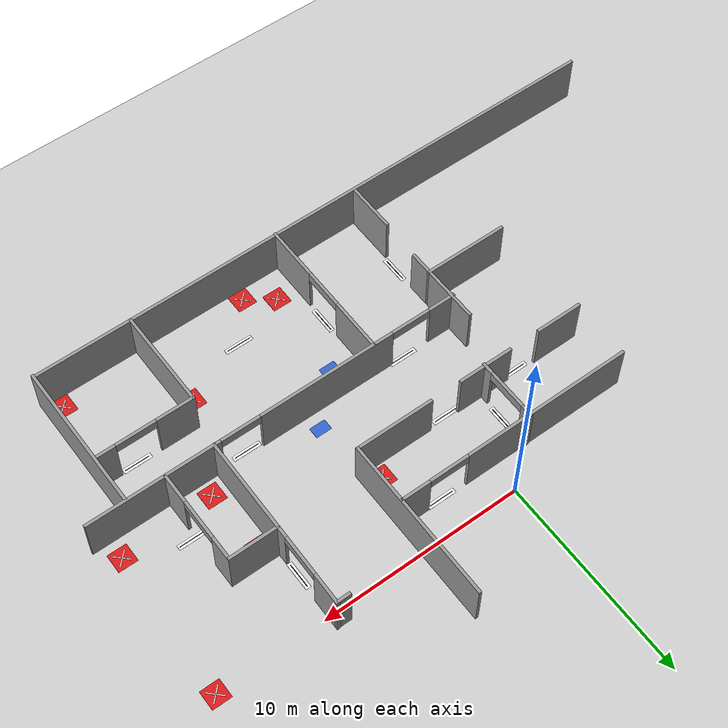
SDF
<sdf version="1.7">
 <world name="default">
  <model name="ground_plane">
   <static>1</static>
   <link name="link">
    <collision name="collision">
     <geometry><plane><normal>0 0 1</normal><size>100 100</size></plane></geometry>
     <surface><friction><ode><mu>100</mu><mu2>50</mu2></ode></friction></surface>
    </collision>
    <visual name="visual">
     <cast_shadows>0</cast_shadows>
     <geometry><plane><normal>0 0 1</normal><size>100 100</size></plane></geometry>
     <material>
      <script><uri>file://media/materials/scripts/gazebo.material</uri><name>Gazebo/Grey</name></script>
     </material>
    </visual>
   </link>
  </model>
  <model name="Untitled">
   <pose>-0.105598 -0.5029 0 0 -0 0</pose>
   <link name="Wall_100">
    <pose>12.1601 -5.34541 0 0 -0 -1.5708</pose>
    <visual name="Wall_100_Visual_0">
     <pose>-1.76137 0 1.25 0 -0 0</pose>
     <geometry><box><size>1.22725 0.15 2.5</size></box></geometry>
     <material>
      <script><uri>file://media/materials/scripts/gazebo.material</uri><name>Gazebo/Grey</name></script>
      <ambient>1 1 1 1</ambient>
     </material>
     <meta><layer>0</layer></meta>
    </visual>
    <collision name="Wall_100_Collision_0">
     <geometry><box><size>1.22725 0.15 2.5</size></box></geometry>
     <pose>-1.76137 0 1.25 0 -0 0</pose>
    </collision>
    <visual name="Wall_100_Visual_1">
     <pose>1.61363 0 1.25 0 -0 0</pose>
     <geometry><box><size>1.52275 0.15 2.5</size></box></geometry>
     <material>
      <script><uri>file://media/materials/scripts/gazebo.material</uri><name>Gazebo/Grey</name></script>
      <ambient>1 1 1 1</ambient>
     </material>
     <meta><layer>0</layer></meta>
    </visual>
    <collision name="Wall_100_Collision_1">
     <geometry><box><size>1.52275 0.15 2.5</size></box></geometry>
     <pose>1.61363 0 1.25 0 -0 0</pose>
    </collision>
    <visual name="Wall_100_Visual_2">
     <pose>-0.147748 0 2.25 0 -0 0</pose>
     <geometry><box><size>2 0.15 0.5</size></box></geometry>
     <material>
      <script><uri>file://media/materials/scripts/gazebo.material</uri><name>Gazebo/Grey</name></script>
      <ambient>1 1 1 1</ambient>
     </material>
     <meta><layer>0</layer></meta>
    </visual>
    <collision name="Wall_100_Collision_2">
     <geometry><box><size>2 0.15 0.5</size></box></geometry>
     <pose>-0.147748 0 2.25 0 -0 0</pose>
    </collision>
   </link>
   <link name="Wall_102">
    <collision name="Wall_102_Collision">
     <geometry><box><size>0.75 0.15 2.5</size></box></geometry>
     <pose>0 0 1.25 0 -0 0</pose>
    </collision>
    <visual name="Wall_102_Visual">
     <pose>0 0 1.25 0 -0 0</pose>
     <geometry><box><size>0.75 0.15 2.5</size></box></geometry>
     <material>
      <script><uri>file://media/materials/scripts/gazebo.material</uri><name>Gazebo/Grey</name></script>
      <ambient>1 1 1 1</ambient>
     </material>
     <meta><layer>0</layer></meta>
    </visual>
    <pose>9.52193 1.02364 0 0 -0 3.14159</pose>
   </link>
   <link name="Wall_12">
    <collision name="Wall_12_Collision_0">
     <geometry><box><size>2.371417 0.15 2.5</size></box></geometry>
     <pose>-4.889292 0 1.25 0 -0 0</pose>
    </collision>
    <collision name="Wall_12_Collision_1">
     <geometry><box><size>2.8 0.15 2.5</size></box></geometry>
     <pose>-0.803583 0 1.25 0 -0 0</pose>
    </collision>
    <collision name="Wall_12_Collision_2">
     <geometry><box><size>3.978583 0.15 2.5</size></box></geometry>
     <pose>4.085709 0 1.25 0 -0 0</pose>
    </collision>
    <visual name="Wall_12_Visual_0">
     <pose>-4.889292 0 1.25 0 -0 0</pose>
     <geometry><box><size>2.371417 0.15 2.5</size></box></geometry>
     <material>
      <script><uri>file://media/materials/scripts/gazebo.material</uri><name>Gazebo/Grey</name></script>
      <ambient>1 1 1 1</ambient>
     </material>
     <meta><layer>0</layer></meta>
    </visual>
    <visual name="Wall_12_Visual_1">
     <pose>-0.803583 0 1.25 0 -0 0</pose>
     <geometry><box><size>2.8 0.15 2.5</size></box></geometry>
     <material>
      <script><uri>file://media/materials/scripts/gazebo.material</uri><name>Gazebo/Grey</name></script>
      <ambient>1 1 1 1</ambient>
     </material>
     <meta><layer>0</layer></meta>
    </visual>
    <visual name="Wall_12_Visual_2">
     <pose>4.085709 0 1.25 0 -0 0</pose>
     <geometry><box><size>3.978583 0.15 2.5</size></box></geometry>
     <material>
      <script><uri>file://media/materials/scripts/gazebo.material</uri><name>Gazebo/Grey</name></script>
      <ambient>1 1 1 1</ambient>
     </material>
     <meta><layer>0</layer></meta>
    </visual>
    <pose>-0.940819 -4.00136 0 0 -0 0</pose>
   </link>
   <link name="Wall_14">
    <collision name="Wall_14_Collision">
     <geometry><box><size>8.15 0.15 2.5</size></box></geometry>
     <pose>0 0 1.25 0 -0 0</pose>
    </collision>
    <visual name="Wall_14_Visual">
     <pose>0 0 1.25 0 -0 0</pose>
     <geometry><box><size>8.15 0.15 2.5</size></box></geometry>
     <material>
      <script><uri>file://media/materials/scripts/gazebo.material</uri><name>Gazebo/Grey</name></script>
      <ambient>1 1 1 1</ambient>
     </material>
     <meta><layer>0</layer></meta>
    </visual>
    <pose>5.05918 -0.001359 0 0 -0 1.5708</pose>
   </link>
   <link name="Wall_18">
    <pose>-0.932893 -1.01205 0 0 -0 0</pose>
    <visual name="Wall_18_Visual_0">
     <pose>-1.73618 0 1.25 0 -0 0</pose>
     <geometry><box><size>8.52764 0.15 2.5</size></box></geometry>
     <material>
      <script><uri>file://media/materials/scripts/gazebo.material</uri><name>Gazebo/Grey</name></script>
      <ambient>1 1 1 1</ambient>
     </material>
     <meta><layer>0</layer></meta>
    </visual>
    <collision name="Wall_18_Collision_0">
     <geometry><box><size>8.52764 0.15 2.5</size></box></geometry>
     <pose>-1.73618 0 1.25 0 -0 0</pose>
    </collision>
    <visual name="Wall_18_Visual_1">
     <pose>5.26382 0 1.25 0 -0 0</pose>
     <geometry><box><size>1.47236 0.15 2.5</size></box></geometry>
     <material>
      <script><uri>file://media/materials/scripts/gazebo.material</uri><name>Gazebo/Grey</name></script>
      <ambient>1 1 1 1</ambient>
     </material>
     <meta><layer>0</layer></meta>
    </visual>
    <collision name="Wall_18_Collision_1">
     <geometry><box><size>1.47236 0.15 2.5</size></box></geometry>
     <pose>5.26382 0 1.25 0 -0 0</pose>
    </collision>
    <visual name="Wall_18_Visual_2">
     <pose>3.52764 0 2.25 0 -0 0</pose>
     <geometry><box><size>2 0.15 0.5</size></box></geometry>
     <material>
      <script><uri>file://media/materials/scripts/gazebo.material</uri><name>Gazebo/Grey</name></script>
      <ambient>1 1 1 1</ambient>
     </material>
     <meta><layer>0</layer></meta>
    </visual>
    <collision name="Wall_18_Collision_2">
     <geometry><box><size>2 0.15 0.5</size></box></geometry>
     <pose>3.52764 0 2.25 0 -0 0</pose>
    </collision>
   </link>
   <link name="Wall_20">
    <pose>-1.71937 -2.51877 0 0 -0 -1.5708</pose>
    <visual name="Wall_20_Visual_0">
     <pose>-1.30824 0 1.25 0 -0 0</pose>
     <geometry><box><size>0.633515 0.15 2.5</size></box></geometry>
     <material>
      <script><uri>file://media/materials/scripts/gazebo.material</uri><name>Gazebo/Grey</name></script>
      <ambient>1 1 1 1</ambient>
     </material>
     <meta><layer>0</layer></meta>
    </visual>
    <collision name="Wall_20_Collision_0">
     <geometry><box><size>0.633515 0.15 2.5</size></box></geometry>
     <pose>-1.30824 0 1.25 0 -0 0</pose>
    </collision>
    <visual name="Wall_20_Visual_1">
     <pose>1.31676 0 1.25 0 -0 0</pose>
     <geometry><box><size>0.616485 0.15 2.5</size></box></geometry>
     <material>
      <script><uri>file://media/materials/scripts/gazebo.material</uri><name>Gazebo/Grey</name></script>
      <ambient>1 1 1 1</ambient>
     </material>
     <meta><layer>0</layer></meta>
    </visual>
    <collision name="Wall_20_Collision_1">
     <geometry><box><size>0.616485 0.15 2.5</size></box></geometry>
     <pose>1.31676 0 1.25 0 -0 0</pose>
    </collision>
    <visual name="Wall_20_Visual_2">
     <pose>0.008515 0 2.25 0 -0 0</pose>
     <geometry><box><size>2 0.15 0.5</size></box></geometry>
     <material>
      <script><uri>file://media/materials/scripts/gazebo.material</uri><name>Gazebo/Grey</name></script>
      <ambient>1 1 1 1</ambient>
     </material>
     <meta><layer>0</layer></meta>
    </visual>
    <collision name="Wall_20_Collision_2">
     <geometry><box><size>2 0.15 0.5</size></box></geometry>
     <pose>0.008515 0 2.25 0 -0 0</pose>
    </collision>
   </link>
   <link name="Wall_73">
    <collision name="Wall_73_Collision">
     <geometry><box><size>4.25 0.15 2.5</size></box></geometry>
     <pose>0 0 1.25 0 -0 0</pose>
    </collision>
    <visual name="Wall_73_Visual">
     <pose>0 0 1.25 0 -0 0</pose>
     <geometry><box><size>4.25 0.15 2.5</size></box></geometry>
     <material>
      <script><uri>file://media/materials/scripts/gazebo.material</uri><name>Gazebo/Grey</name></script>
      <ambient>1 1 1 1</ambient>
     </material>
     <meta><layer>0</layer></meta>
    </visual>
    <pose>-4.86541 -9.27813 0 0 -0 0</pose>
   </link>
   <link name="Wall_77">
    <collision name="Wall_77_Collision">
     <geometry><box><size>2.96235 0.15 2.5</size></box></geometry>
     <pose>0 0 1.25 0 -0 0</pose>
    </collision>
    <visual name="Wall_77_Visual">
     <pose>0 0 1.25 0 -0 0</pose>
     <geometry><box><size>2.96235 0.15 2.5</size></box></geometry>
     <material>
      <script><uri>file://media/materials/scripts/gazebo.material</uri><name>Gazebo/Grey</name></script>
      <ambient>1 1 1 1</ambient>
     </material>
     <meta><layer>0</layer></meta>
    </visual>
    <pose>-2.8242 -7.87198 0 0 -0 1.57705</pose>
   </link>
   <link name="Wall_79">
    <pose>6.54429 -7.68426 0 0 -0 0</pose>
    <visual name="Wall_79_Visual_0">
     <pose>-8.79057 0 1.25 0 -0 0</pose>
     <geometry><box><size>1.41886 0.15 2.5</size></box></geometry>
     <material>
      <script><uri>file://media/materials/scripts/gazebo.material</uri><name>Gazebo/Grey</name></script>
      <ambient>1 1 1 1</ambient>
     </material>
     <meta><layer>0</layer></meta>
    </visual>
    <collision name="Wall_79_Collision_0">
     <geometry><box><size>1.41886 0.15 2.5</size></box></geometry>
     <pose>-8.79057 0 1.25 0 -0 0</pose>
    </collision>
    <visual name="Wall_79_Visual_1">
     <pose>-2.60617 0 1.25 0 -0 0</pose>
     <geometry><box><size>6.94993 0.15 2.5</size></box></geometry>
     <material>
      <script><uri>file://media/materials/scripts/gazebo.material</uri><name>Gazebo/Grey</name></script>
      <ambient>1 1 1 1</ambient>
     </material>
     <meta><layer>0</layer></meta>
    </visual>
    <collision name="Wall_79_Collision_1">
     <geometry><box><size>6.94993 0.15 2.5</size></box></geometry>
     <pose>-2.60617 0 1.25 0 -0 0</pose>
    </collision>
    <visual name="Wall_79_Visual_2">
     <pose>6.1844 0 1.25 0 -0 0</pose>
     <geometry><box><size>6.63121 0.15 2.5</size></box></geometry>
     <material>
      <script><uri>file://media/materials/scripts/gazebo.material</uri><name>Gazebo/Grey</name></script>
      <ambient>1 1 1 1</ambient>
     </material>
     <meta><layer>0</layer></meta>
    </visual>
    <collision name="Wall_79_Collision_2">
     <geometry><box><size>6.63121 0.15 2.5</size></box></geometry>
     <pose>6.1844 0 1.25 0 -0 0</pose>
    </collision>
    <visual name="Wall_79_Visual_3">
     <pose>-7.08114 0 2.25 0 -0 0</pose>
     <geometry><box><size>2 0.15 0.5</size></box></geometry>
     <material>
      <script><uri>file://media/materials/scripts/gazebo.material</uri><name>Gazebo/Grey</name></script>
      <ambient>1 1 1 1</ambient>
     </material>
     <meta><layer>0</layer></meta>
    </visual>
    <collision name="Wall_79_Collision_3">
     <geometry><box><size>2 0.15 0.5</size></box></geometry>
     <pose>-7.08114 0 2.25 0 -0 0</pose>
    </collision>
    <visual name="Wall_79_Visual_4">
     <pose>1.86879 0 2.25 0 -0 0</pose>
     <geometry><box><size>2 0.15 0.5</size></box></geometry>
     <material>
      <script><uri>file://media/materials/scripts/gazebo.material</uri><name>Gazebo/Grey</name></script>
      <ambient>1 1 1 1</ambient>
     </material>
     <meta><layer>0</layer></meta>
    </visual>
    <collision name="Wall_79_Collision_4">
     <geometry><box><size>2 0.15 0.5</size></box></geometry>
     <pose>1.86879 0 2.25 0 -0 0</pose>
    </collision>
   </link>
   <link name="Wall_8">
    <collision name="Wall_8_Collision">
     <geometry><box><size>30.15 0.15 2.5</size></box></geometry>
     <pose>0 0 1.25 0 -0 0</pose>
    </collision>
    <visual name="Wall_8_Visual">
     <pose>0 0 1.25 0 -0 0</pose>
     <geometry><box><size>30.15 0.15 2.5</size></box></geometry>
     <material>
      <script><uri>file://media/materials/scripts/gazebo.material</uri><name>Gazebo/Grey</name></script>
      <ambient>1 1 1 1</ambient>
     </material>
     <meta><layer>0</layer></meta>
    </visual>
    <pose>-0.940819 -15.0014 0 0 -0 0</pose>
   </link>
   <link name="Wall_81">
    <pose>1.4776 -11.3593 0 0 -0 -1.5708</pose>
    <visual name="Wall_81_Visual_0">
     <pose>-2.38039 0 1.25 0 -0 0</pose>
     <geometry><box><size>2.73922 0.15 2.5</size></box></geometry>
     <material>
      <script><uri>file://media/materials/scripts/gazebo.material</uri><name>Gazebo/Grey</name></script>
      <ambient>1 1 1 1</ambient>
     </material>
     <meta><layer>0</layer></meta>
    </visual>
    <collision name="Wall_81_Collision_0">
     <geometry><box><size>2.73922 0.15 2.5</size></box></geometry>
     <pose>-2.38039 0 1.25 0 -0 0</pose>
    </collision>
    <visual name="Wall_81_Visual_1">
     <pose>2.36961 0 1.25 0 -0 0</pose>
     <geometry><box><size>2.76078 0.15 2.5</size></box></geometry>
     <material>
      <script><uri>file://media/materials/scripts/gazebo.material</uri><name>Gazebo/Grey</name></script>
      <ambient>1 1 1 1</ambient>
     </material>
     <meta><layer>0</layer></meta>
    </visual>
    <collision name="Wall_81_Collision_1">
     <geometry><box><size>2.76078 0.15 2.5</size></box></geometry>
     <pose>2.36961 0 1.25 0 -0 0</pose>
    </collision>
    <visual name="Wall_81_Visual_2">
     <pose>-0.010785 0 2.25 0 -0 0</pose>
     <geometry><box><size>2 0.15 0.5</size></box></geometry>
     <material>
      <script><uri>file://media/materials/scripts/gazebo.material</uri><name>Gazebo/Grey</name></script>
      <ambient>1 1 1 1</ambient>
     </material>
     <meta><layer>0</layer></meta>
    </visual>
    <collision name="Wall_81_Collision_2">
     <geometry><box><size>2 0.15 0.5</size></box></geometry>
     <pose>-0.010785 0 2.25 0 -0 0</pose>
    </collision>
   </link>
   <link name="Wall_83">
    <collision name="Wall_83_Collision">
     <geometry><box><size>2.5 0.15 2.5</size></box></geometry>
     <pose>0 0 1.25 0 -0 0</pose>
    </collision>
    <visual name="Wall_83_Visual">
     <pose>0 0 1.25 0 -0 0</pose>
     <geometry><box><size>2.5 0.15 2.5</size></box></geometry>
     <material>
      <script><uri>file://media/materials/scripts/gazebo.material</uri><name>Gazebo/Grey</name></script>
      <ambient>1 1 1 1</ambient>
     </material>
     <meta><layer>0</layer></meta>
    </visual>
    <pose>-2.89285 -13.6845 0 0 -0 1.5708</pose>
   </link>
   <link name="Wall_85">
    <collision name="Wall_85_Collision">
     <geometry><box><size>1.25 0.15 2.5</size></box></geometry>
     <pose>0 0 1.25 0 -0 0</pose>
    </collision>
    <visual name="Wall_85_Visual">
     <pose>0 0 1.25 0 -0 0</pose>
     <geometry><box><size>1.25 0.15 2.5</size></box></geometry>
     <material>
      <script><uri>file://media/materials/scripts/gazebo.material</uri><name>Gazebo/Grey</name></script>
      <ambient>1 1 1 1</ambient>
     </material>
     <meta><layer>0</layer></meta>
    </visual>
    <pose>-2.81541 -9.82813 0 0 -0 -1.5708</pose>
   </link>
   <link name="Wall_87">
    <pose>11.6115 -10.1109 0 0 -0 3.14159</pose>
    <visual name="Wall_87_Visual_0">
     <pose>-1.96604 0 1.25 0 -0 0</pose>
     <geometry><box><size>1.06791 0.15 2.5</size></box></geometry>
     <material>
      <script><uri>file://media/materials/scripts/gazebo.material</uri><name>Gazebo/Grey</name></script>
      <ambient>1 1 1 1</ambient>
     </material>
     <meta><layer>0</layer></meta>
    </visual>
    <collision name="Wall_87_Collision_0">
     <geometry><box><size>1.06791 0.15 2.5</size></box></geometry>
     <pose>-1.96604 0 1.25 0 -0 0</pose>
    </collision>
    <visual name="Wall_87_Visual_1">
     <pose>1.53396 0 1.25 0 -0 0</pose>
     <geometry><box><size>1.93209 0.15 2.5</size></box></geometry>
     <material>
      <script><uri>file://media/materials/scripts/gazebo.material</uri><name>Gazebo/Grey</name></script>
      <ambient>1 1 1 1</ambient>
     </material>
     <meta><layer>0</layer></meta>
    </visual>
    <collision name="Wall_87_Collision_1">
     <geometry><box><size>1.93209 0.15 2.5</size></box></geometry>
     <pose>1.53396 0 1.25 0 -0 0</pose>
    </collision>
    <visual name="Wall_87_Visual_2">
     <pose>-0.432087 0 2.25 0 -0 0</pose>
     <geometry><box><size>2 0.15 0.5</size></box></geometry>
     <material>
      <script><uri>file://media/materials/scripts/gazebo.material</uri><name>Gazebo/Grey</name></script>
      <ambient>1 1 1 1</ambient>
     </material>
     <meta><layer>0</layer></meta>
    </visual>
    <collision name="Wall_87_Collision_2">
     <geometry><box><size>2 0.15 0.5</size></box></geometry>
     <pose>-0.432087 0 2.25 0 -0 0</pose>
    </collision>
   </link>
   <link name="Wall_88">
    <collision name="Wall_88_Collision">
     <geometry><box><size>5 0.15 2.5</size></box></geometry>
     <pose>0 0 1.25 0 -0 0</pose>
    </collision>
    <visual name="Wall_88_Visual">
     <pose>0 0 1.25 0 -0 0</pose>
     <geometry><box><size>5 0.15 2.5</size></box></geometry>
     <material>
      <script><uri>file://media/materials/scripts/gazebo.material</uri><name>Gazebo/Grey</name></script>
      <ambient>1 1 1 1</ambient>
     </material>
     <meta><layer>0</layer></meta>
    </visual>
    <pose>9.18647 -12.5359 0 0 -0 -1.5708</pose>
   </link>
   <link name="Wall_94">
    <collision name="Wall_94_Collision">
     <geometry><box><size>7.5 0.15 2.5</size></box></geometry>
     <pose>0 0 1.25 0 -0 0</pose>
    </collision>
    <visual name="Wall_94_Visual">
     <pose>0 0 1.25 0 -0 0</pose>
     <geometry><box><size>7.5 0.15 2.5</size></box></geometry>
     <material>
      <script><uri>file://media/materials/scripts/gazebo.material</uri><name>Gazebo/Grey</name></script>
      <ambient>1 1 1 1</ambient>
     </material>
     <meta><layer>0</layer></meta>
    </visual>
    <pose>14.0592 -11.3802 0 0 -0 1.5708</pose>
   </link>
   <link name="Wall_96">
    <pose>9.7818 -3.3238 0 0 -0 1.56162</pose>
    <visual name="Wall_96_Visual_0">
     <pose>-1.79292 0 1.25 0 -0 0</pose>
     <geometry><box><size>5.3129 0.15 2.5</size></box></geometry>
     <material>
      <script><uri>file://media/materials/scripts/gazebo.material</uri><name>Gazebo/Grey</name></script>
      <ambient>1 1 1 1</ambient>
     </material>
     <meta><layer>0</layer></meta>
    </visual>
    <collision name="Wall_96_Collision_0">
     <geometry><box><size>5.3129 0.15 2.5</size></box></geometry>
     <pose>-1.79292 0 1.25 0 -0 0</pose>
    </collision>
    <visual name="Wall_96_Visual_1">
     <pose>3.65645 0 1.25 0 -0 0</pose>
     <geometry><box><size>1.58584 0.15 2.5</size></box></geometry>
     <material>
      <script><uri>file://media/materials/scripts/gazebo.material</uri><name>Gazebo/Grey</name></script>
      <ambient>1 1 1 1</ambient>
     </material>
     <meta><layer>0</layer></meta>
    </visual>
    <collision name="Wall_96_Collision_1">
     <geometry><box><size>1.58584 0.15 2.5</size></box></geometry>
     <pose>3.65645 0 1.25 0 -0 0</pose>
    </collision>
    <visual name="Wall_96_Visual_2">
     <pose>1.86353 0 2.25 0 -0 0</pose>
     <geometry><box><size>2 0.15 0.5</size></box></geometry>
     <material>
      <script><uri>file://media/materials/scripts/gazebo.material</uri><name>Gazebo/Grey</name></script>
      <ambient>1 1 1 1</ambient>
     </material>
     <meta><layer>0</layer></meta>
    </visual>
    <collision name="Wall_96_Collision_2">
     <geometry><box><size>2 0.15 0.5</size></box></geometry>
     <pose>1.86353 0 2.25 0 -0 0</pose>
    </collision>
   </link>
   <link name="Wall_99">
    <collision name="Wall_99_Collision">
     <geometry><box><size>2.5 0.15 2.5</size></box></geometry>
     <pose>0 0 1.25 0 -0 0</pose>
    </collision>
    <visual name="Wall_99_Visual">
     <pose>0 0 1.25 0 -0 0</pose>
     <geometry><box><size>2.5 0.15 2.5</size></box></geometry>
     <material>
      <script><uri>file://media/materials/scripts/gazebo.material</uri><name>Gazebo/Grey</name></script>
      <ambient>1 1 1 1</ambient>
     </material>
     <meta><layer>0</layer></meta>
    </visual>
    <pose>10.9851 -3.04541 0 0 -0 0</pose>
   </link>
   <static>1</static>
  </model>
  <model name="semantic_marker_door_12">
   <static>true</static>
   <pose>2.75 -1.55 0 0 0 0.0000</pose>
   <link name="link">
    <visual name="door_patch">
     <pose>0 0 0.005 0 0 0</pose>
     <geometry><box><size>1.40 0.26 0.01</size></box></geometry>
     <material><ambient>0.96 0.96 0.96 1</ambient><diffuse>0.96 0.96 0.96 1</diffuse></material>
    </visual>
    <visual name="door_center_line">
     <pose>0 0 0.011 0 0 0</pose>
     <geometry><box><size>1.22 0.03 0.005</size></box></geometry>
     <material><ambient>0.15 0.15 0.15 1</ambient><diffuse>0.15 0.15 0.15 1</diffuse></material>
    </visual>
   </link>
  </model>
  <model name="semantic_marker_door_13">
   <static>true</static>
   <pose>-1.75 -3.05 0 0 0 1.5708</pose>
   <link name="link">
    <visual name="door_patch">
     <pose>0 0 0.005 0 0 0</pose>
     <geometry><box><size>1.40 0.26 0.01</size></box></geometry>
     <material><ambient>0.96 0.96 0.96 1</ambient><diffuse>0.96 0.96 0.96 1</diffuse></material>
    </visual>
    <visual name="door_center_line">
     <pose>0 0 0.011 0 0 0</pose>
     <geometry><box><size>1.22 0.03 0.005</size></box></geometry>
     <material><ambient>0.15 0.15 0.15 1</ambient><diffuse>0.15 0.15 0.15 1</diffuse></material>
    </visual>
   </link>
  </model>
  <model name="semantic_marker_door_14">
   <static>true</static>
   <pose>-0.25 -8.15 0 0 0 0.0000</pose>
   <link name="link">
    <visual name="door_patch">
     <pose>0 0 0.005 0 0 0</pose>
     <geometry><box><size>1.40 0.26 0.01</size></box></geometry>
     <material><ambient>0.96 0.96 0.96 1</ambient><diffuse>0.96 0.96 0.96 1</diffuse></material>
    </visual>
    <visual name="door_center_line">
     <pose>0 0 0.011 0 0 0</pose>
     <geometry><box><size>1.22 0.03 0.005</size></box></geometry>
     <material><ambient>0.15 0.15 0.15 1</ambient><diffuse>0.15 0.15 0.15 1</diffuse></material>
    </visual>
   </link>
  </model>
  <model name="semantic_marker_door_15">
   <static>true</static>
   <pose>-2.85 -12.15 0 0 0 1.5708</pose>
   <link name="link">
    <visual name="door_patch">
     <pose>0 0 0.005 0 0 0</pose>
     <geometry><box><size>1.40 0.26 0.01</size></box></geometry>
     <material><ambient>0.96 0.96 0.96 1</ambient><diffuse>0.96 0.96 0.96 1</diffuse></material>
    </visual>
    <visual name="door_center_line">
     <pose>0 0 0.011 0 0 0</pose>
     <geometry><box><size>1.22 0.03 0.005</size></box></geometry>
     <material><ambient>0.15 0.15 0.15 1</ambient><diffuse>0.15 0.15 0.15 1</diffuse></material>
    </visual>
   </link>
  </model>
  <model name="semantic_marker_door_17">
   <static>true</static>
   <pose>1.45 -11.85 0 0 0 1.5708</pose>
   <link name="link">
    <visual name="door_patch">
     <pose>0 0 0.005 0 0 0</pose>
     <geometry><box><size>1.40 0.26 0.01</size></box></geometry>
     <material><ambient>0.96 0.96 0.96 1</ambient><diffuse>0.96 0.96 0.96 1</diffuse></material>
    </visual>
    <visual name="door_center_line">
     <pose>0 0 0.011 0 0 0</pose>
     <geometry><box><size>1.22 0.03 0.005</size></box></geometry>
     <material><ambient>0.15 0.15 0.15 1</ambient><diffuse>0.15 0.15 0.15 1</diffuse></material>
    </visual>
   </link>
  </model>
  <model name="semantic_marker_door_18">
   <static>true</static>
   <pose>5.25 -13.05 0 0 0 0.0000</pose>
   <link name="link">
    <visual name="door_patch">
     <pose>0 0 0.005 0 0 0</pose>
     <geometry><box><size>1.40 0.26 0.01</size></box></geometry>
     <material><ambient>0.96 0.96 0.96 1</ambient><diffuse>0.96 0.96 0.96 1</diffuse></material>
    </visual>
    <visual name="door_center_line">
     <pose>0 0 0.011 0 0 0</pose>
     <geometry><box><size>1.22 0.03 0.005</size></box></geometry>
     <material><ambient>0.15 0.15 0.15 1</ambient><diffuse>0.15 0.15 0.15 1</diffuse></material>
    </visual>
   </link>
  </model>
  <model name="semantic_marker_door_19">
   <static>true</static>
   <pose>8.05 -8.35 0 0 0 0.0000</pose>
   <link name="link">
    <visual name="door_patch">
     <pose>0 0 0.005 0 0 0</pose>
     <geometry><box><size>1.40 0.26 0.01</size></box></geometry>
     <material><ambient>0.96 0.96 0.96 1</ambient><diffuse>0.96 0.96 0.96 1</diffuse></material>
    </visual>
    <visual name="door_center_line">
     <pose>0 0 0.011 0 0 0</pose>
     <geometry><box><size>1.22 0.03 0.005</size></box></geometry>
     <material><ambient>0.15 0.15 0.15 1</ambient><diffuse>0.15 0.15 0.15 1</diffuse></material>
    </visual>
   </link>
  </model>
  <model name="semantic_marker_door_20">
   <static>true</static>
   <pose>12.15 -10.65 0 0 0 0.0000</pose>
   <link name="link">
    <visual name="door_patch">
     <pose>0 0 0.005 0 0 0</pose>
     <geometry><box><size>1.40 0.26 0.01</size></box></geometry>
     <material><ambient>0.96 0.96 0.96 1</ambient><diffuse>0.96 0.96 0.96 1</diffuse></material>
    </visual>
    <visual name="door_center_line">
     <pose>0 0 0.011 0 0 0</pose>
     <geometry><box><size>1.22 0.03 0.005</size></box></geometry>
     <material><ambient>0.15 0.15 0.15 1</ambient><diffuse>0.15 0.15 0.15 1</diffuse></material>
    </visual>
   </link>
  </model>
  <model name="semantic_marker_door_21">
   <static>true</static>
   <pose>12.25 -6.25 0 0 0 0.0000</pose>
   <link name="link">
    <visual name="door_patch">
     <pose>0 0 0.005 0 0 0</pose>
     <geometry><box><size>1.40 0.26 0.01</size></box></geometry>
     <material><ambient>0.96 0.96 0.96 1</ambient><diffuse>0.96 0.96 0.96 1</diffuse></material>
    </visual>
    <visual name="door_center_line">
     <pose>0 0 0.011 0 0 0</pose>
     <geometry><box><size>1.22 0.03 0.005</size></box></geometry>
     <material><ambient>0.15 0.15 0.15 1</ambient><diffuse>0.15 0.15 0.15 1</diffuse></material>
    </visual>
   </link>
  </model>
  <model name="semantic_marker_door_22">
   <static>true</static>
   <pose>9.65 -2.25 0 0 0 1.5708</pose>
   <link name="link">
    <visual name="door_patch">
     <pose>0 0 0.005 0 0 0</pose>
     <geometry><box><size>1.40 0.26 0.01</size></box></geometry>
     <material><ambient>0.96 0.96 0.96 1</ambient><diffuse>0.96 0.96 0.96 1</diffuse></material>
    </visual>
    <visual name="door_center_line">
     <pose>0 0 0.011 0 0 0</pose>
     <geometry><box><size>1.22 0.03 0.005</size></box></geometry>
     <material><ambient>0.15 0.15 0.15 1</ambient><diffuse>0.15 0.15 0.15 1</diffuse></material>
    </visual>
   </link>
  </model>
  <model name="semantic_marker_door_24">
   <static>true</static>
   <pose>0.05 -4.65 0 0 0 0.0000</pose>
   <link name="link">
    <visual name="door_patch">
     <pose>0 0 0.005 0 0 0</pose>
     <geometry><box><size>1.40 0.26 0.01</size></box></geometry>
     <material><ambient>0.96 0.96 0.96 1</ambient><diffuse>0.96 0.96 0.96 1</diffuse></material>
    </visual>
    <visual name="door_center_line">
     <pose>0 0 0.011 0 0 0</pose>
     <geometry><box><size>1.22 0.03 0.005</size></box></geometry>
     <material><ambient>0.15 0.15 0.15 1</ambient><diffuse>0.15 0.15 0.15 1</diffuse></material>
    </visual>
   </link>
  </model>
  <model name="semantic_marker_door_25">
   <static>true</static>
   <pose>-3.75 -4.65 0 0 0 0.0000</pose>
   <link name="link">
    <visual name="door_patch">
     <pose>0 0 0.005 0 0 0</pose>
     <geometry><box><size>1.40 0.26 0.01</size></box></geometry>
     <material><ambient>0.96 0.96 0.96 1</ambient><diffuse>0.96 0.96 0.96 1</diffuse></material>
    </visual>
    <visual name="door_center_line">
     <pose>0 0 0.011 0 0 0</pose>
     <geometry><box><size>1.22 0.03 0.005</size></box></geometry>
     <material><ambient>0.15 0.15 0.15 1</ambient><diffuse>0.15 0.15 0.15 1</diffuse></material>
    </visual>
   </link>
  </model>
  <model name="semantic_marker_dead_end_4">
   <static>true</static>
   <pose>8.55 -11.85 0 0 0 0.0000</pose>
   <link name="link">
    <visual name="dead_end_patch">
     <pose>0 0 0.005 0 0 0</pose>
     <geometry><box><size>0.95 0.95 0.01</size></box></geometry>
     <material><ambient>0.85 0.10 0.10 1</ambient><diffuse>0.85 0.10 0.10 1</diffuse></material>
    </visual>
    <visual name="cross_bar_a">
     <pose>0 0 0.011 0 0 0.78</pose>
     <geometry><box><size>0.83 0.05 0.005</size></box></geometry>
     <material><ambient>0.98 0.98 0.98 1</ambient><diffuse>0.98 0.98 0.98 1</diffuse></material>
    </visual>
    <visual name="cross_bar_b">
     <pose>0 0 0.011 0 0 -0.78</pose>
     <geometry><box><size>0.83 0.05 0.005</size></box></geometry>
     <material><ambient>0.98 0.98 0.98 1</ambient><diffuse>0.98 0.98 0.98 1</diffuse></material>
    </visual>
   </link>
  </model>
  <model name="semantic_marker_dead_end_5">
   <static>true</static>
   <pose>2.45 -14.05 0 0 0 0.0000</pose>
   <link name="link">
    <visual name="dead_end_patch">
     <pose>0 0 0.005 0 0 0</pose>
     <geometry><box><size>0.95 0.95 0.01</size></box></geometry>
     <material><ambient>0.85 0.10 0.10 1</ambient><diffuse>0.85 0.10 0.10 1</diffuse></material>
    </visual>
    <visual name="cross_bar_a">
     <pose>0 0 0.011 0 0 0.78</pose>
     <geometry><box><size>0.83 0.05 0.005</size></box></geometry>
     <material><ambient>0.98 0.98 0.98 1</ambient><diffuse>0.98 0.98 0.98 1</diffuse></material>
    </visual>
    <visual name="cross_bar_b">
     <pose>0 0 0.011 0 0 -0.78</pose>
     <geometry><box><size>0.83 0.05 0.005</size></box></geometry>
     <material><ambient>0.98 0.98 0.98 1</ambient><diffuse>0.98 0.98 0.98 1</diffuse></material>
    </visual>
   </link>
  </model>
  <model name="semantic_marker_dead_end_6">
   <static>true</static>
   <pose>3.75 -14.95 0 0 0 0.0000</pose>
   <link name="link">
    <visual name="dead_end_patch">
     <pose>0 0 0.005 0 0 0</pose>
     <geometry><box><size>0.95 0.95 0.01</size></box></geometry>
     <material><ambient>0.85 0.10 0.10 1</ambient><diffuse>0.85 0.10 0.10 1</diffuse></material>
    </visual>
    <visual name="cross_bar_a">
     <pose>0 0 0.011 0 0 0.78</pose>
     <geometry><box><size>0.83 0.05 0.005</size></box></geometry>
     <material><ambient>0.98 0.98 0.98 1</ambient><diffuse>0.98 0.98 0.98 1</diffuse></material>
    </visual>
    <visual name="cross_bar_b">
     <pose>0 0 0.011 0 0 -0.78</pose>
     <geometry><box><size>0.83 0.05 0.005</size></box></geometry>
     <material><ambient>0.98 0.98 0.98 1</ambient><diffuse>0.98 0.98 0.98 1</diffuse></material>
    </visual>
   </link>
  </model>
  <model name="semantic_marker_dead_end_7">
   <static>true</static>
   <pose>13.25 -14.95 0 0 0 0.0000</pose>
   <link name="link">
    <visual name="dead_end_patch">
     <pose>0 0 0.005 0 0 0</pose>
     <geometry><box><size>0.95 0.95 0.01</size></box></geometry>
     <material><ambient>0.85 0.10 0.10 1</ambient><diffuse>0.85 0.10 0.10 1</diffuse></material>
    </visual>
    <visual name="cross_bar_a">
     <pose>0 0 0.011 0 0 0.78</pose>
     <geometry><box><size>0.83 0.05 0.005</size></box></geometry>
     <material><ambient>0.98 0.98 0.98 1</ambient><diffuse>0.98 0.98 0.98 1</diffuse></material>
    </visual>
    <visual name="cross_bar_b">
     <pose>0 0 0.011 0 0 -0.78</pose>
     <geometry><box><size>0.83 0.05 0.005</size></box></geometry>
     <material><ambient>0.98 0.98 0.98 1</ambient><diffuse>0.98 0.98 0.98 1</diffuse></material>
    </visual>
   </link>
  </model>
  <model name="semantic_marker_dead_end_8">
   <static>true</static>
   <pose>10.45 -7.45 0 0 0 0.0000</pose>
   <link name="link">
    <visual name="dead_end_patch">
     <pose>0 0 0.005 0 0 0</pose>
     <geometry><box><size>0.95 0.95 0.01</size></box></geometry>
     <material><ambient>0.85 0.10 0.10 1</ambient><diffuse>0.85 0.10 0.10 1</diffuse></material>
    </visual>
    <visual name="cross_bar_a">
     <pose>0 0 0.011 0 0 0.78</pose>
     <geometry><box><size>0.83 0.05 0.005</size></box></geometry>
     <material><ambient>0.98 0.98 0.98 1</ambient><diffuse>0.98 0.98 0.98 1</diffuse></material>
    </visual>
    <visual name="cross_bar_b">
     <pose>0 0 0.011 0 0 -0.78</pose>
     <geometry><box><size>0.83 0.05 0.005</size></box></geometry>
     <material><ambient>0.98 0.98 0.98 1</ambient><diffuse>0.98 0.98 0.98 1</diffuse></material>
    </visual>
   </link>
  </model>
  <model name="semantic_marker_dead_end_9">
   <static>true</static>
   <pose>10.25 -4.25 0 0 0 0.0000</pose>
   <link name="link">
    <visual name="dead_end_patch">
     <pose>0 0 0.005 0 0 0</pose>
     <geometry><box><size>0.95 0.95 0.01</size></box></geometry>
     <material><ambient>0.85 0.10 0.10 1</ambient><diffuse>0.85 0.10 0.10 1</diffuse></material>
    </visual>
    <visual name="cross_bar_a">
     <pose>0 0 0.011 0 0 0.78</pose>
     <geometry><box><size>0.83 0.05 0.005</size></box></geometry>
     <material><ambient>0.98 0.98 0.98 1</ambient><diffuse>0.98 0.98 0.98 1</diffuse></material>
    </visual>
    <visual name="cross_bar_b">
     <pose>0 0 0.011 0 0 -0.78</pose>
     <geometry><box><size>0.83 0.05 0.005</size></box></geometry>
     <material><ambient>0.98 0.98 0.98 1</ambient><diffuse>0.98 0.98 0.98 1</diffuse></material>
    </visual>
   </link>
  </model>
  <model name="semantic_marker_dead_end_10">
   <static>true</static>
   <pose>15.05 -7.25 0 0 0 0.0000</pose>
   <link name="link">
    <visual name="dead_end_patch">
     <pose>0 0 0.005 0 0 0</pose>
     <geometry><box><size>0.95 0.95 0.01</size></box></geometry>
     <material><ambient>0.85 0.10 0.10 1</ambient><diffuse>0.85 0.10 0.10 1</diffuse></material>
    </visual>
    <visual name="cross_bar_a">
     <pose>0 0 0.011 0 0 0.78</pose>
     <geometry><box><size>0.83 0.05 0.005</size></box></geometry>
     <material><ambient>0.98 0.98 0.98 1</ambient><diffuse>0.98 0.98 0.98 1</diffuse></material>
    </visual>
    <visual name="cross_bar_b">
     <pose>0 0 0.011 0 0 -0.78</pose>
     <geometry><box><size>0.83 0.05 0.005</size></box></geometry>
     <material><ambient>0.98 0.98 0.98 1</ambient><diffuse>0.98 0.98 0.98 1</diffuse></material>
    </visual>
   </link>
  </model>
  <model name="semantic_marker_dead_end_11">
   <static>true</static>
   <pose>15.25 -0.05 0 0 0 0.0000</pose>
   <link name="link">
    <visual name="dead_end_patch">
     <pose>0 0 0.005 0 0 0</pose>
     <geometry><box><size>0.95 0.95 0.01</size></box></geometry>
     <material><ambient>0.85 0.10 0.10 1</ambient><diffuse>0.85 0.10 0.10 1</diffuse></material>
    </visual>
    <visual name="cross_bar_a">
     <pose>0 0 0.011 0 0 0.78</pose>
     <geometry><box><size>0.83 0.05 0.005</size></box></geometry>
     <material><ambient>0.98 0.98 0.98 1</ambient><diffuse>0.98 0.98 0.98 1</diffuse></material>
    </visual>
    <visual name="cross_bar_b">
     <pose>0 0 0.011 0 0 -0.78</pose>
     <geometry><box><size>0.83 0.05 0.005</size></box></geometry>
     <material><ambient>0.98 0.98 0.98 1</ambient><diffuse>0.98 0.98 0.98 1</diffuse></material>
    </visual>
   </link>
  </model>
  <model name="semantic_marker_dead_end_21">
   <static>true</static>
   <pose>4.15 -3.85 0 0 0 0.0000</pose>
   <link name="link">
    <visual name="dead_end_patch">
     <pose>0 0 0.005 0 0 0</pose>
     <geometry><box><size>0.95 0.95 0.01</size></box></geometry>
     <material><ambient>0.85 0.10 0.10 1</ambient><diffuse>0.85 0.10 0.10 1</diffuse></material>
    </visual>
    <visual name="cross_bar_a">
     <pose>0 0 0.011 0 0 0.78</pose>
     <geometry><box><size>0.83 0.05 0.005</size></box></geometry>
     <material><ambient>0.98 0.98 0.98 1</ambient><diffuse>0.98 0.98 0.98 1</diffuse></material>
    </visual>
    <visual name="cross_bar_b">
     <pose>0 0 0.011 0 0 -0.78</pose>
     <geometry><box><size>0.83 0.05 0.005</size></box></geometry>
     <material><ambient>0.98 0.98 0.98 1</ambient><diffuse>0.98 0.98 0.98 1</diffuse></material>
    </visual>
   </link>
  </model>
  <model name="semantic_marker_water_1">
   <static>true</static>
   <pose>2.75 -9.55 0 0 0 0.0000</pose>
   <link name="link">
    <visual name="water_patch">
     <pose>0 0 0.005 0 0 0</pose>
     <geometry><box><size>0.80 0.55 0.01</size></box></geometry>
     <material>
      <ambient>0.10 0.35 0.85 0.82</ambient>
      <diffuse>0.10 0.35 0.85 0.82</diffuse>
      <specular>0.95 0.95 0.95 1</specular>
     </material>
    </visual>
   </link>
  </model>
  <model name="semantic_marker_water_6">
   <static>true</static>
   <pose>4.85 -7.35 0 0 0 0.0000</pose>
   <link name="link">
    <visual name="water_patch">
     <pose>0 0 0.005 0 0 0</pose>
     <geometry><box><size>0.80 0.55 0.01</size></box></geometry>
     <material>
      <ambient>0.10 0.35 0.85 0.82</ambient>
      <diffuse>0.10 0.35 0.85 0.82</diffuse>
      <specular>0.95 0.95 0.95 1</specular>
     </material>
    </visual>
   </link>
  </model>
 </world>
</sdf>
